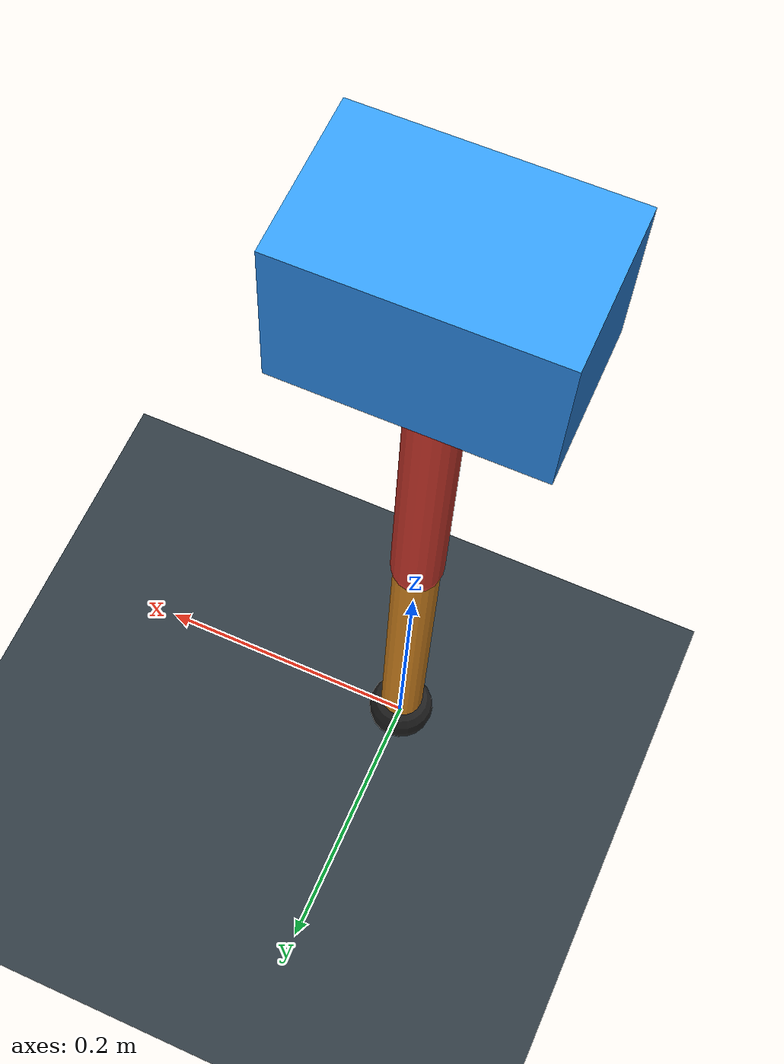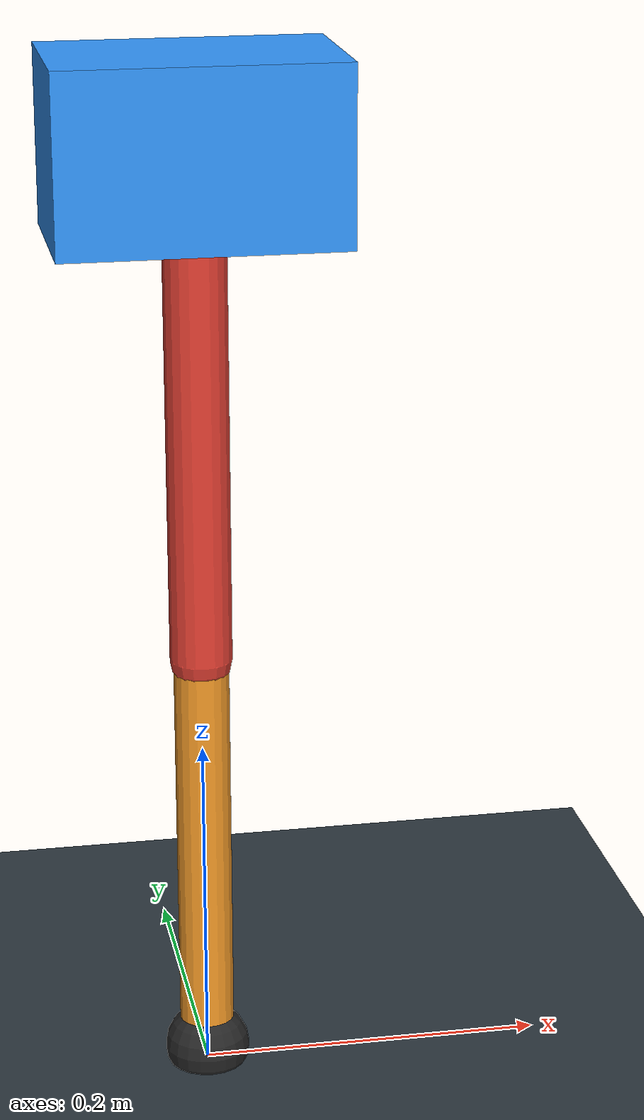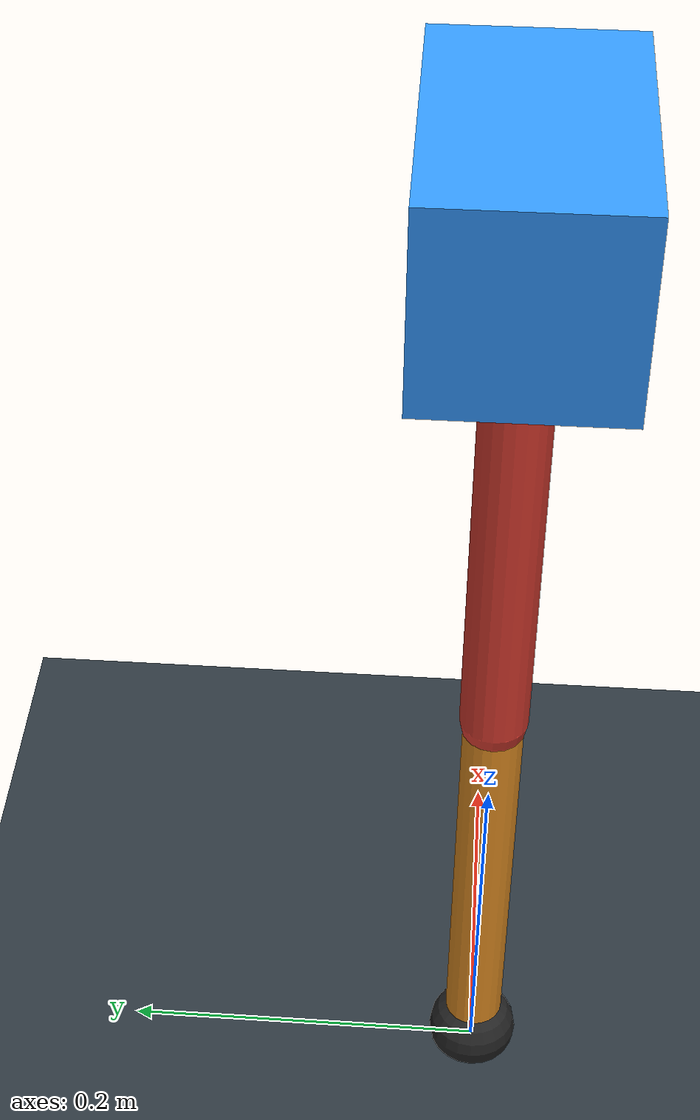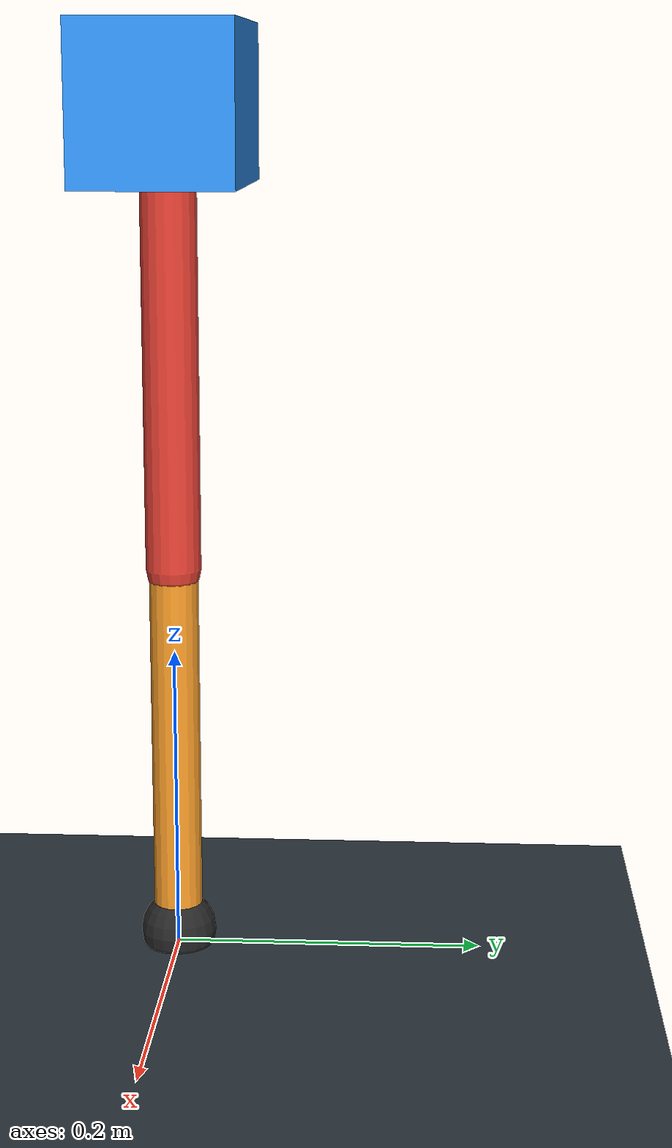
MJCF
<mujoco model="single_axis_two_bar">
  <compiler angle="radian" inertiafromgeom="true"/>
  <option timestep="0.001" integrator="implicitfast" gravity="0 0 -9.81"/>
  <default>
    <joint damping="0.08"/>
    <geom friction="1.2 0.01 0.0001" condim="3"/>
  </default>
  <worldbody>
    <geom name="floor" type="plane" size="5 5 0.1" rgba="0.18 0.22 0.25 1"/>
    <body name="carriage" pos="0 0 0.5503660873372112">
      <joint name="pole_slide" type="slide" axis="0 0 1"/>
      <geom name="payload" type="box" size="0.08 0.05 0.05" mass="3.0942483623259847" rgba="0.2 0.6 1 1"/>
      <body name="thigh" pos="0 0 0">
        <joint name="hip" type="hinge" axis="0 1 0"/>
        <geom name="thigh_link" type="capsule" fromto="0 0 0 0 0 -0.29471131076884866" size="0.018" mass="0.2099857031891917" rgba="0.9 0.25 0.2 1"/>
        <body name="shank" pos="0 0 -0.29471131076884866">
          <joint name="knee" type="hinge" axis="0 1 0"/>
          <geom name="shank_link" type="capsule" fromto="0 0 0 0 0 -0.24690321225920397" size="0.016" mass="0.17592180127278442" rgba="0.95 0.6 0.15 1"/>
          <geom name="foot" type="sphere" pos="0 0 -0.24690321225920397" size="0.025" mass="0.03" rgba="0.15 0.15 0.15 1"/>
          <site name="toe" pos="0 0 -0.24690321225920397" size="0.008"/>
        </body>
      </body>
    </body>
  </worldbody>
  <actuator>
    <motor name="hip_motor" joint="hip" ctrlrange="-32.941085138955 32.941085138955"/>
    <motor name="knee_motor" joint="knee" ctrlrange="-159.84968534856353 159.84968534856353"/>
  </actuator>
</mujoco>
